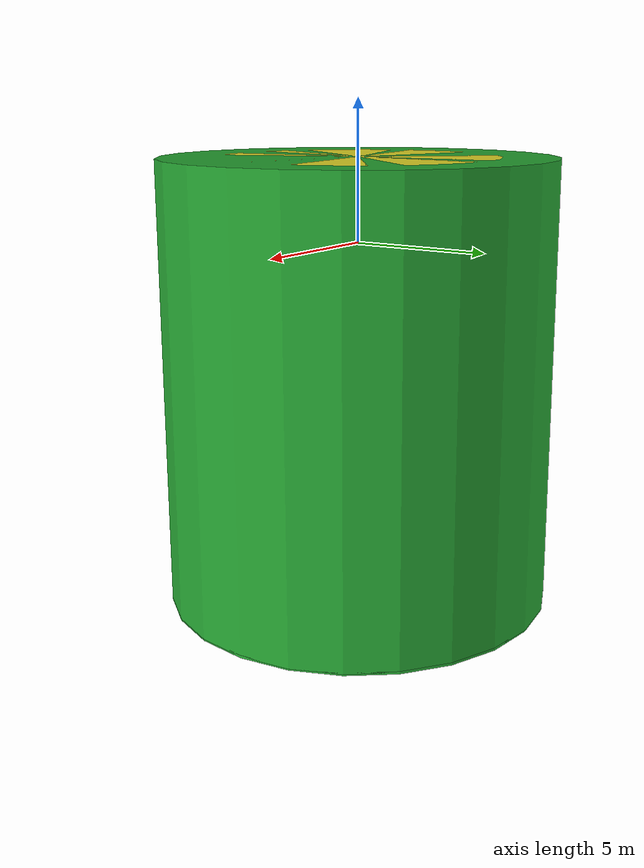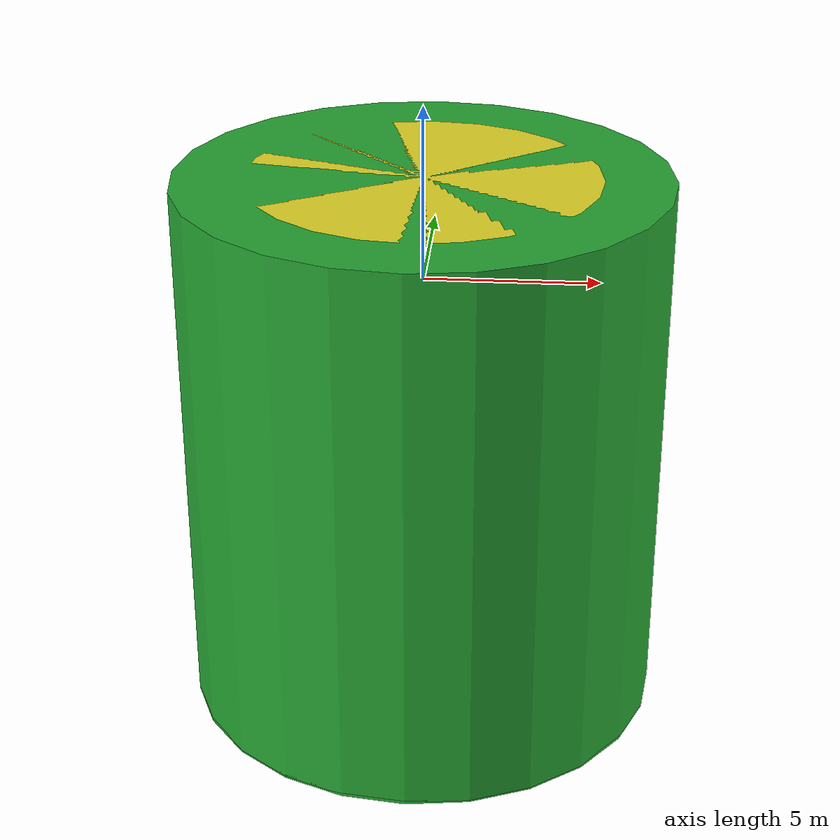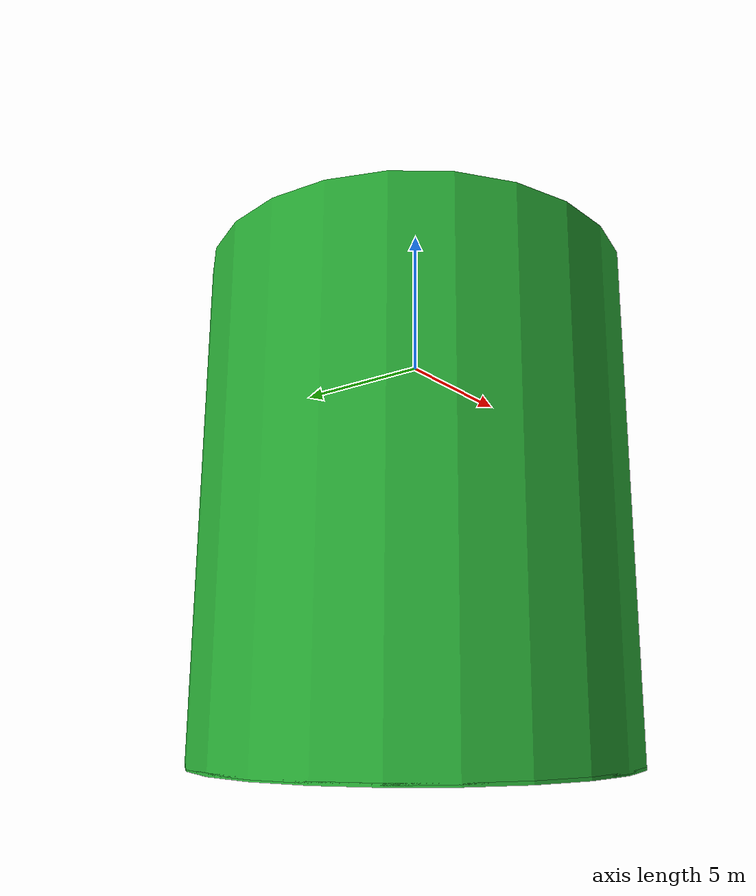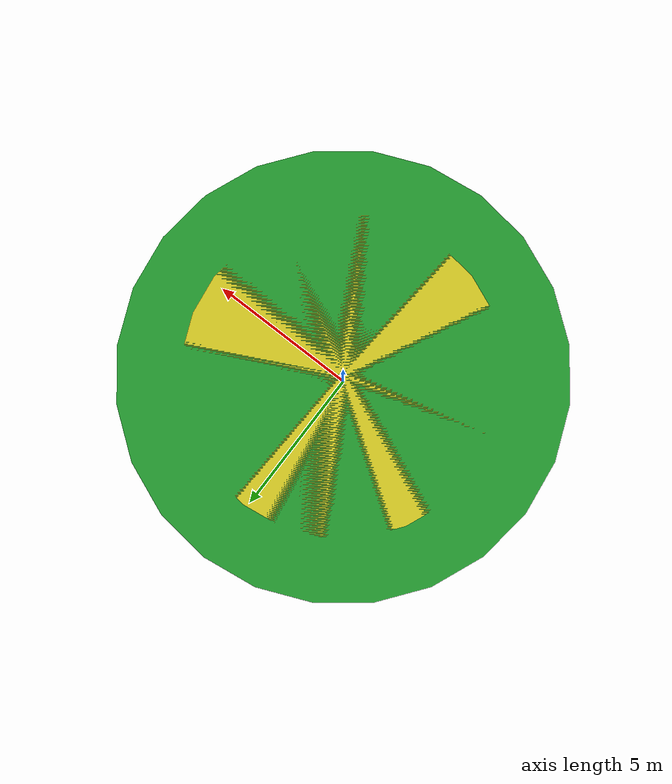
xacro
<?xml version="1.0"?>
<robot name="area_vis_cylinder" xmlns:xacro="http://ros.org/wiki/xacro">

  <link name="base_link"/>

	<link name="cylinder_area_vis_link1">
		<origin xyz="0 0 0" rpy="0.0 0.0 0.0"/>
		<visual>
			<origin xyz="0.0 0.0 0.0" rpy="0.0 0.0 0.0"/>
			<geometry>
				<cylinder radius="5.0" length="16.0"/>
			</geometry>
		</visual>
	</link>
	<gazebo reference="cylinder_area_vis_link1">
		<material>Gazebo/Yellow</material>
	</gazebo>

	<joint name="joint_cylinder_area_vis1" type="fixed">
		<parent link="base_link"/>
		<child  link="cylinder_area_vis_link1"/>
		<origin xyz="0.0 0.0 -5.0" rpy="0.0 0.0 0.0"/>
		<axis xyz="1 0 0"/>
	</joint>

	<link name="cylinder_area_vis_link2">
		<origin xyz="0 0 0" rpy="0.0 0.0 0.0"/>
    <inertial>
      <origin xyz="0 0 0" rpy="0 0 0"/>
      <mass value="0.1"/>
      <inertia ixx="0.001" ixy="0.0" ixz="0.0" iyy="0.001" iyz="0.0" izz="0.001"/>
    </inertial>
		<visual>
			<origin xyz="0.0 0.0 0.0" rpy="0.0 0.0 0.0"/>
			<geometry>
				<cylinder radius="5.0" length="0.1"/>
			</geometry>
		</visual>
    <collision>
      <origin xyz="0.0 0.0 0.0" rpy="0.0 0.0 0.0" />
      <geometry>
				<cylinder radius="0.1" length="0.1"/>
      </geometry>
    </collision>
	</link>
	<gazebo reference="cylinder_area_vis_link2">
		<material>Gazebo/Yellow</material>
	</gazebo>

	<joint name="joint_cylinder_area_vis2" type="fixed">
		<parent link="cylinder_area_vis_link1"/>
		<child  link="cylinder_area_vis_link2"/>
		<origin xyz="0.0 0.0 -8.0" rpy="0.0 0.0 0.0"/>
		<axis xyz="1 0 0"/>
	</joint>

	<link name="margin_area_vis_link1">
		<origin xyz="0 0 0" rpy="0.0 0.0 0.0"/>
		<visual>
			<origin xyz="0.0 0.0 0.0" rpy="0.0 0.0 0.0"/>
			<geometry>
				<cylinder radius="6.9949408378548534" length="16.0"/>
			</geometry>
		</visual>
	</link>
	<gazebo reference="margin_area_vis_link1">
		<material>Gazebo/Green</material>
	</gazebo>

	<joint name="joint_margin_area_vis1" type="fixed">
		<parent link="base_link"/>
		<child  link="margin_area_vis_link1"/>
		<origin xyz="0.0 0.0 -5.0" rpy="0.0 0.0 0.0"/>
		<axis xyz="1 0 0"/>
	</joint>

	<link name="margin_area_vis_link2">
		<origin xyz="0 0 0" rpy="0.0 0.0 0.0"/>
		<visual>
			<origin xyz="0.0 0.0 0.0" rpy="0.0 0.0 0.0"/>
			<geometry>
				<cylinder radius="6.9949408378548534" length="0.1"/>
			</geometry>
		</visual>
	</link>
	<gazebo reference="margin_area_vis_link2">
		<material>Gazebo/Green</material>
	</gazebo>

	<joint name="joint_margin_area_vis2" type="fixed">
		<parent link="margin_area_vis_link1"/>
		<child  link="margin_area_vis_link2"/>
		<origin xyz="0.0 0.0 -8.0" rpy="0.0 0.0 0.0"/>
		<axis xyz="1 0 0"/>
	</joint>

</robot>
